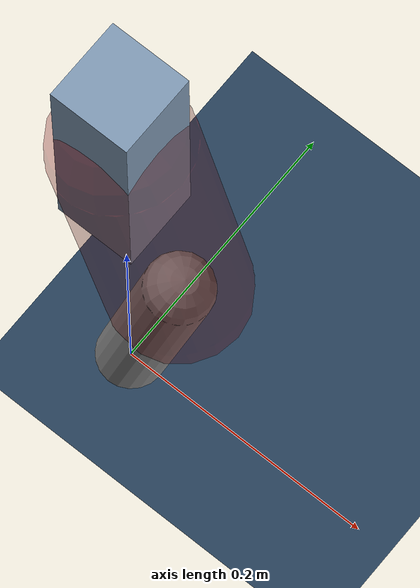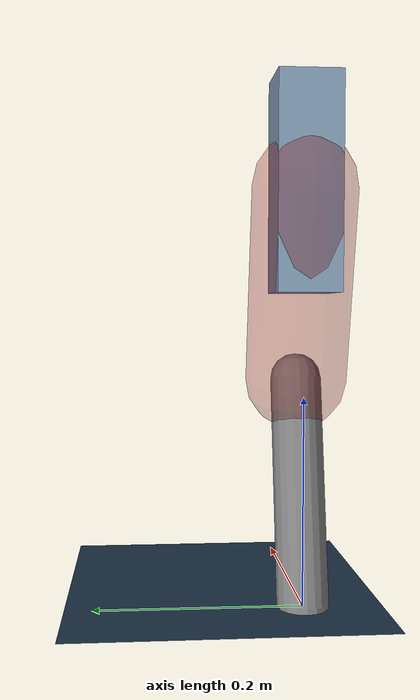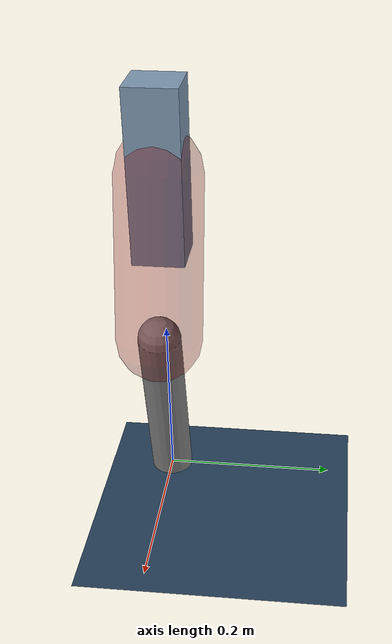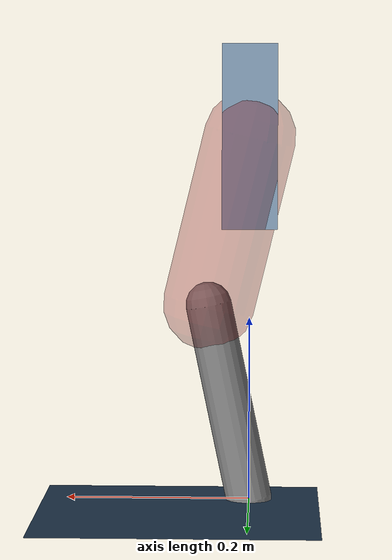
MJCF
<mujoco model="Hopper2D">
	<compiler inertiafromgeom="true" angle="radian" />
	<option timestep="0.001" integrator="implicit" cone="elliptic" solver="Newton" tolerance="1e-10" />

	<default>
		<geom contype="1" conaffinity="1" condim="3" friction="2 0.005 0.0001" solref="0.005 1" />
		<joint limited="true" damping="0.1" />
	</default>

	<asset>
		<texture name="skybox" type="skybox" builtin="gradient" rgb1=".4 .6 .8" rgb2="0 0 0" width="800" height="800" />
		<texture name="grid" type="2d" builtin="checker" rgb1=".1 .2 .3" rgb2=".2 .3 .4" width="300" height="300" mark="edge" markrgb=".2 .3 .4" />
		<material name="ground" texture="grid" texrepeat="1 1" texuniform="true" reflectance="0.1" />
		<material name="leg" rgba="0.5 0.6 0.7 1" />
	</asset>

	<worldbody>

		<geom name="floor" type="plane" size="5 5 0.25" material="ground" />

		<light directional="false" diffuse="0.8 0.8 0.8" specular="0.3 0.3 0.3" pos="0 0 2" dir="0 0 -1" />
		<light mode="targetbodycom" target="base" directional="false" diffuse="0.8 0.8 0.8" specular="0.3 0.3 0.3" pos="0 0 2" dir="0 0 -1" />

		<camera name="fixed" pos="0 -2 1" xyaxes="1 0 0 0 0 1" />
		<camera name="tracking" mode="trackcom" pos="0 -3 1" />

		<body name="root" pos="0 0 0.3988086996417485">
			<joint name="slide_x" type="slide" axis="1 0 0" range="-100 100" />
			<joint name="slide_z" type="slide" axis="0 0 1" range="0 10" />

			<body name="base" pos="0 0 0">
				<geom name="torso" type="box" size="0.03 0.03 0.1" mass="2.371" material="leg" />

				<body name="link1" pos="0 0 0" euler="0 1.3321609251115114 0">
					<joint type="hinge" axis="0 -1 0" pos="0 0 0" name="hinge1" limited="true" range="-3.14 3.14" stiffness="0" damping="0.1" />
					<geom name="thigh" type="capsule" fromto="0 0 0 0.18956673380927214 0 0" size="0.05" rgba="0.5 0 0 0.3" mass="0.7039168345231803" />

					<body name="link2" pos="0.18956673380927214 0 0" euler="0 0.4444681558631277 0">
						<joint type="hinge" axis="0 -1 0" pos="0 0 0" name="hinge2" limited="true" range="-3.14 3.14" stiffness="0" damping="0.1" />
						<geom name="shank" type="capsule" fromto="0 0 0 0.21924196583247635 0 0" size="0.025" mass="0.41701776924922873" />

					</body>
				</body>
			</body>
		</body>
	</worldbody>

	<actuator>
		<motor name="torque1" joint="hinge1" ctrlrange="-113.06844505363212 113.06844505363212" ctrllimited="true" gear="1" />
		<motor name="torque2" joint="hinge2" ctrlrange="-40.0946471462656 40.0946471462656" ctrllimited="true" gear="1" />
	</actuator>
</mujoco>
